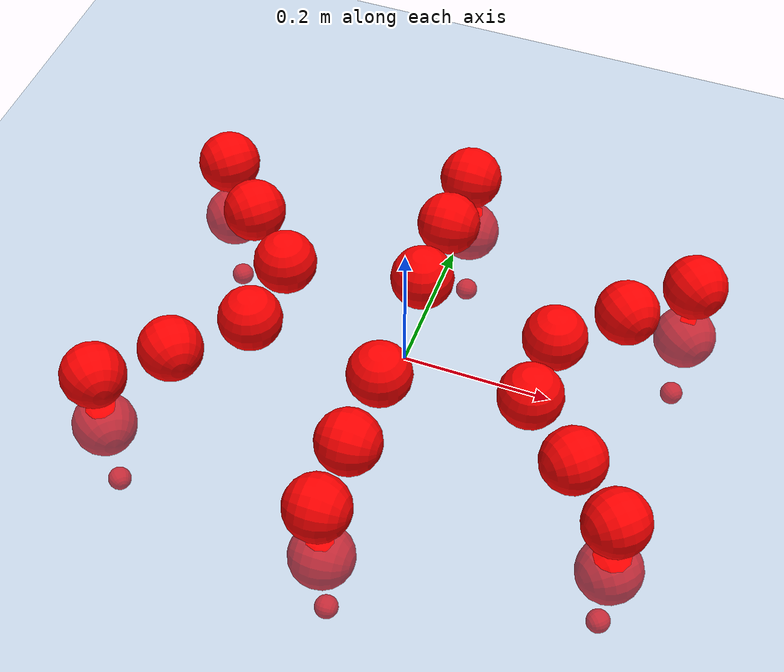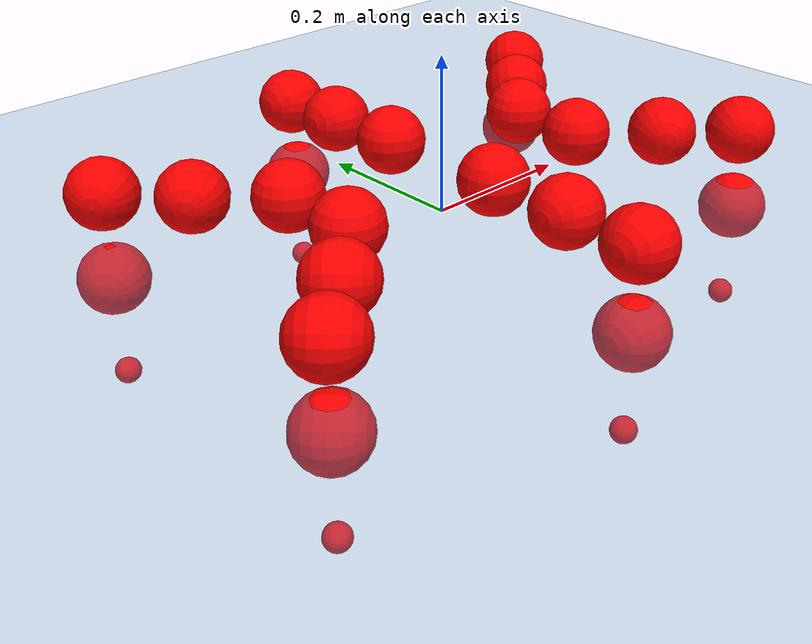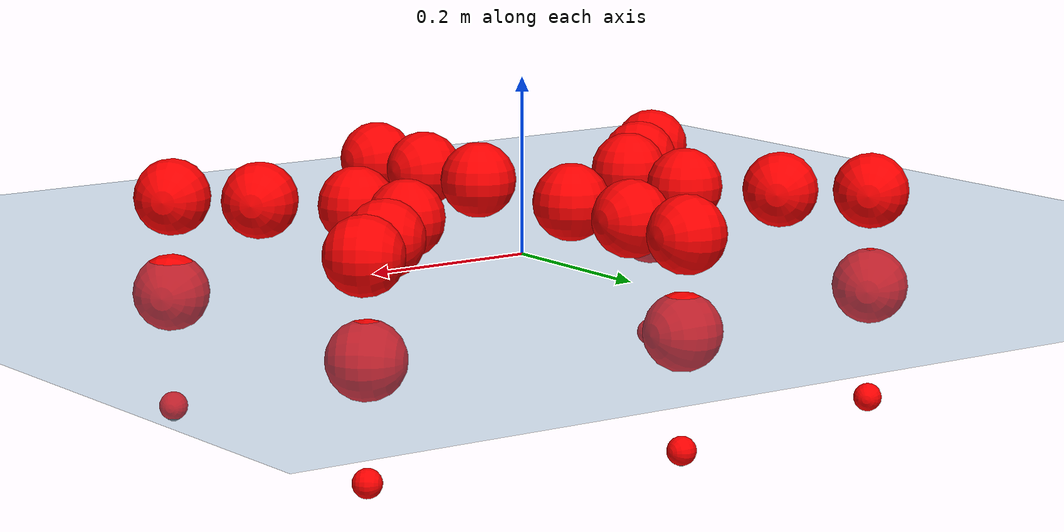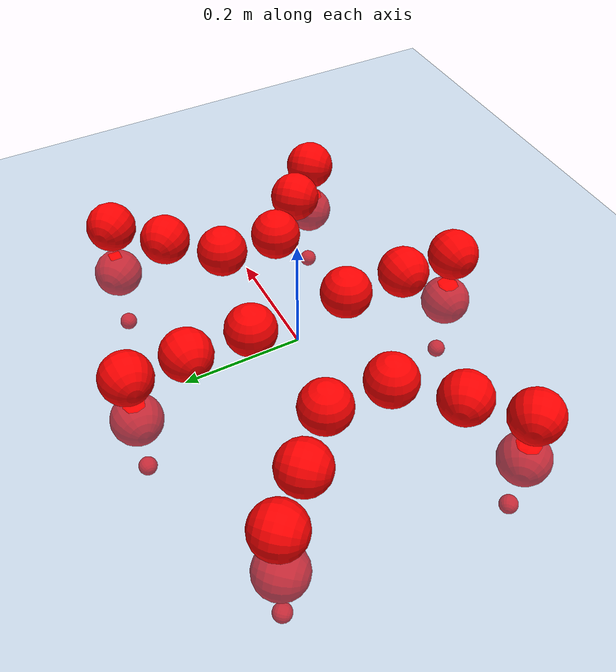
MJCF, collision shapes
<mujoco model="Golem">
  <compiler angle="radian" assetdir="assets" balanceinertia="true" inertiafromgeom="false"/>

  <option timestep="0.005" density="1.2" viscosity="2e-05"/>

  <size nkey="1"/>

  <visual>
    <quality shadowsize="8192"/>
    <map shadowclip="0.5"/>
  </visual>

  <default>
    <default class="/">
      <joint armature="0.01" damping="0.01" frictionloss="0.01"/>
      <geom contype="0" conaffinity="0" group="1" solref="-1000 -80"/>
      <site size="0.01 0.005 0.005" group="5"/>
      <general forcelimited="true" biastype="affine" gainprm="25" biasprm="0 -25 -0.5"/>
      <default class="visual">
        <geom type="mesh" group="2"/>
      </default>
      <default class="collision">
        <geom group="3"/>
      </default>
      <default class="foot">
        <geom size="0.01 0 0" condim="6" group="4" priority="1" solimp="0.015 1 0.01"/>
      </default>
      <default class="reward_collision_sphere">
        <geom group="5" rgba="1 0 0 1"/>
      </default>
    </default>
  </default>

  <asset>
    <texture type="skybox" colorspace="auto" name="//unnamed_texture_0" builtin="gradient" rgb1="0.95 0.95 0.95" rgb2="0.95 0.95 0.95" width="100" height="600"/>
    <texture type="2d" colorspace="auto" name="texplane" builtin="checker" rgb1="0.345 0.575 0.748" rgb2="0.345 0.575 0.748" markrgb="1 1 1" width="512" height="512"/>
    <material name="MatPlane" class="/" texture="texplane" texuniform="true" texrepeat="2 2" specular="0.9"/>
    <mesh name="body" class="/" file="body.stl" scale="0.001 0.001 0.001"/>
    <mesh name="coxa" class="/" file="coxa.stl" scale="0.001 0.001 0.001"/>
    <mesh name="femur" class="/" file="femur.stl" scale="0.001 0.001 0.001"/>
    <mesh name="tibia" class="/" file="tibia.stl" scale="0.001 0.001 0.001"/>
    <mesh name="tarsus" class="/" file="tarsus.stl" scale="0.001 0.001 0.001"/>
  </asset>

  <worldbody>
    <geom name="floor" class="/" size="100 100 0.125" type="plane" group="0" material="MatPlane"/>
    <light name="toplight_shadow" class="/" pos="0 0 5" dir="0.0990148 0.0990148 -0.990148" type="directional" ambient="0.04 0.04 0.04" diffuse="0.55 0.55 0.55" specular="0.12 0.12 0.12"/>
    <light name="toplight_fill" class="/" pos="0 0 5" dir="0.0990148 0.0990148 -0.990148" type="directional" castshadow="false" ambient="0.04 0.04 0.04" diffuse="0.3 0.3 0.3" specular="0.08 0.08 0.08"/>
    <body name="trunk" pos="-0.00262434 -0.00236927 -0.000846479" quat="1 4.44815e-05 -0.000399449 -0.000590664">
      <inertial pos="0.00300938 -0.00126256 -0.00315634" quat="0.999925 -0.00309627 -0.00412229 -0.0110898" mass="4.82129" diaginertia="0.0261797 0.00737988 0.0164038"/>
      <joint name="//unnamed_joint_0" type="free"/>
      <geom name="//unnamed_geom_1" class="/" pos="0 0 0.0698637" quat="1 0 0 0" type="mesh" rgba="0.9 0.9 0.9 1" mesh="body"/>
      <site name="imu" class="/" pos="0.171038 0.0130868 0.106499" size="0.0107945"/>
      <camera name="track" class="/" pos="0 -1.87739 0" quat="0.707107 0.707107 0 0" mode="trackcom"/>
      <camera name="ego_camera" class="/" pos="0.157044 0 0.109162" quat="-0.5 -0.5 0.5 0.5"/>
      <body name="coxa_RR" pos="-0.216229 -0.0807901 0.0703845" quat="0.382795 -3.44911e-05 -0.000268674 -0.923833">
        <inertial pos="-0.000198601 -0.000942408 0.000911721" quat="0.999997 -0.00256619 -0.000424238 -0.000468403" mass="0.250668" diaginertia="0.0248432 0.00720921 0.015139"/>
        <joint name="coxa_joint_RR" class="/" pos="0 0 0" axis="0.000693635 -0.000133453 -1" range="-3.14525 3.11283" armature="0.0112516" damping="0.0036316" frictionloss="0.0112565"/>
        <geom name="//unnamed_geom_2" class="/" type="mesh" rgba="0.2 0.2 0.2 1" mesh="coxa"/>
        <geom name="//unnamed_geom_3" class="reward_collision_sphere" size="0.043178" pos="-0.0362409 0 0"/>
        <body name="femur_RR" pos="0.074423 0.00204919 -0.0025816" quat="0.500093 -0.500297 0.499631 0.499979">
          <inertial pos="-0.00221384 -0.000220789 -0.001605" quat="0.999951 0.00705977 0.00168878 0.00677637" mass="0.24236" diaginertia="0.0247074 0.00704327 0.0151408"/>
          <joint name="femur_joint_RR" class="/" pos="0 0 0" axis="-0.0062527 0.00337801 -0.999975" stiffness="0.00606813" range="-3.13927 3.14042" armature="0.0112792" damping="0.0141012" frictionloss="0.0106197"/>
          <geom name="//unnamed_geom_4" class="/" type="mesh" rgba="0.9 0.9 0.9 1" mesh="femur"/>
          <geom name="//unnamed_geom_5" class="reward_collision_sphere" size="0.043178"/>
          <body name="tibia_RR" pos="0.00142176 -0.10293 -0.00174147" quat="-0.000320477 1 0.000163529 -0.0002119">
            <inertial pos="0.000617131 -0.000453955 -0.00277979" quat="0.999932 0.00636919 0.00102472 0.00976512" mass="0.259928" diaginertia="0.0264148 0.00767023 0.0157821"/>
            <joint name="tibia_joint_RR" class="/" pos="0 0 0" axis="-0.0152766 -0.0015603 0.999882" range="-3.18794 3.14358" armature="0.00992" damping="0.00136349" frictionloss="0.00926876"/>
            <geom name="//unnamed_geom_6" class="/" type="mesh" rgba="0.2 0.2 0.2 1" mesh="tibia"/>
            <geom name="//unnamed_geom_7" class="reward_collision_sphere" size="0.043178"/>
            <body name="tarsus_RR" pos="0.104085 0.0020217 0.000113581" quat="1 -0.00029203 2.15447e-05 -1.15193e-05">
              <inertial pos="0.0722686 0.000350396 0.00034278" quat="0.497139 0.498691 0.495676 0.508394" mass="0.247877" diaginertia="0.0253562 0.00706255 0.0155008"/>
              <joint name="tarsus_joint_RR" class="/" pos="0 0 0" axis="-0.0077945 0.000592235 0.999969" range="-3.12763 3.08741" armature="0.0101397" damping="0.0434686" frictionloss="0.0107899"/>
              <geom name="//unnamed_geom_8" class="/" type="mesh" rgba="0.9 0.9 0.9 1" mesh="tarsus"/>
              <geom name="foot_1" class="foot" size="0.0110296" pos="0.135299 0 0" quat="0 -0.707107 0 0.707107"/>
              <geom name="//unnamed_geom_10" class="reward_collision_sphere" size="0.043178"/>
              <geom name="//unnamed_geom_11" class="reward_collision_sphere" size="0.0161917" pos="0.129863 0 0"/>
              <site name="foot_1" class="foot" pos="0.135299 0 0" quat="0 -0.707107 0 0.707107" size="0.0107945"/>
            </body>
          </body>
        </body>
      </body>
      <body name="coxa_RM" pos="0.00087655 -0.12191 0.0730194" quat="0.706733 0.000483466 0.000853833 -0.70748">
        <inertial pos="-0.00273593 0.00055989 -0.00247962" quat="0.999901 -0.0133659 0.00423538 0.00117243" mass="0.251844" diaginertia="0.0244172 0.00726304 0.0152244"/>
        <joint name="coxa_joint_RM" class="/" pos="0 0 0" axis="0.000354148 -0.00121484 -0.999999" range="-3.12425 3.15923" armature="0.0102553" damping="0.0101143" frictionloss="0.0100231"/>
        <geom name="//unnamed_geom_12" class="/" type="mesh" rgba="0.2 0.2 0.2 1" mesh="coxa"/>
        <geom name="//unnamed_geom_13" class="reward_collision_sphere" size="0.043178" pos="-0.0362409 0 0"/>
        <body name="femur_RM" pos="0.0733609 0.000771891 -0.00153787" quat="0.500937 -0.498853 0.499986 0.500221">
          <inertial pos="0.00244976 0.0001662 7.28173e-05" quat="0.999942 -0.010151 0.00353656 0.00100673" mass="0.253367" diaginertia="0.0257054 0.00704454 0.0157243"/>
          <joint name="femur_joint_RM" class="/" pos="0 0 0" axis="0.01098 -0.00837308 -0.999905" range="-3.1357 3.13496" armature="0.0112264" damping="0.011866" frictionloss="0.0113189"/>
          <geom name="//unnamed_geom_14" class="/" type="mesh" rgba="0.9 0.9 0.9 1" mesh="femur"/>
          <geom name="//unnamed_geom_15" class="reward_collision_sphere" size="0.043178"/>
          <body name="tibia_RM" pos="0.000947655 -0.0998855 -0.000266683" quat="-0.000118897 1 -0.000170131 -4.12033e-05">
            <inertial pos="-0.00202903 0.00106673 -0.00237624" quat="0.999987 -0.00369226 0.00186408 -0.00285984" mass="0.257858" diaginertia="0.0265397 0.00700924 0.015015"/>
            <joint name="tibia_joint_RM" class="/" pos="0 0 0" axis="-0.00964265 -0.00626049 0.999934" range="-3.14251 3.11677" armature="0.0110553" damping="0.0111176" frictionloss="0.0102727"/>
            <geom name="//unnamed_geom_16" class="/" type="mesh" rgba="0.2 0.2 0.2 1" mesh="tibia"/>
            <geom name="//unnamed_geom_17" class="reward_collision_sphere" size="0.043178"/>
            <body name="tarsus_RM" pos="0.10909 0.000548809 -0.000528929" quat="1 0.000268668 5.93157e-05 0.000134258">
              <inertial pos="0.0734585 0.000320984 0.000861278" quat="0.498393 0.502144 0.501084 0.498368" mass="0.250045" diaginertia="0.0249925 0.00728418 0.0161291"/>
              <joint name="tarsus_joint_RM" class="/" pos="0 0 0" axis="0.0114865 -0.00898149 0.999894" range="-3.15325 3.14144" armature="0.010733" damping="0.00417509" frictionloss="0.0104249"/>
              <geom name="//unnamed_geom_18" class="/" type="mesh" rgba="0.9 0.9 0.9 1" mesh="tarsus"/>
              <geom name="foot_2" class="foot" size="0.00988152" pos="0.135299 0 0" quat="0 -0.707107 0 0.707107"/>
              <geom name="//unnamed_geom_20" class="reward_collision_sphere" size="0.043178"/>
              <geom name="//unnamed_geom_21" class="reward_collision_sphere" size="0.0161917" pos="0.129863 0 0"/>
              <site name="foot_2" class="foot" pos="0.135299 0 0" quat="0 -0.707107 0 0.707107" size="0.0107945"/>
            </body>
          </body>
        </body>
      </body>
      <body name="coxa_RF" pos="0.214932 -0.0757251 0.0682641" quat="0.923982 -5.39273e-05 -9.17149e-05 -0.382437">
        <inertial pos="-0.00177987 -0.000962103 -0.000567463" quat="0.999903 -0.0015532 -0.00460491 0.0130355" mass="0.259189" diaginertia="0.0268708 0.00716216 0.0157525"/>
        <joint name="coxa_joint_RF" class="/" pos="0 0 0" axis="0.00131333 0.00414343 -0.999991" range="-3.16647 3.14351" armature="0.0121819" damping="0.0123042" frictionloss="0.010516"/>
        <geom name="//unnamed_geom_22" class="/" type="mesh" rgba="0.2 0.2 0.2 1" mesh="coxa"/>
        <geom name="//unnamed_geom_23" class="reward_collision_sphere" size="0.043178" pos="-0.0362409 0 0"/>
        <body name="femur_RF" pos="0.0729561 7.94938e-06 0.00204604" quat="0.500052 -0.499957 0.50001 0.499981">
          <inertial pos="0.00224499 0.00211755 0.00212054" quat="0.999992 0.00319217 0.00172915 -0.00178409" mass="0.242824" diaginertia="0.0265227 0.00702488 0.0156821"/>
          <joint name="femur_joint_RF" class="/" pos="0 0 0" axis="-0.00629512 0.0116711 -0.999912" range="-3.1601 3.0843" armature="0.0108635" damping="0.00569159" frictionloss="0.0109302"/>
          <geom name="//unnamed_geom_24" class="/" type="mesh" rgba="0.9 0.9 0.9 1" mesh="femur"/>
          <geom name="//unnamed_geom_25" class="reward_collision_sphere" size="0.043178"/>
          <body name="tibia_RF" pos="-0.00135849 -0.0990382 0.00225657" quat="-9.87125e-05 1 0.000353984 -0.000205434">
            <inertial pos="-0.00198762 -0.00251191 0.00234877" quat="0.999935 -0.00408731 0.0105964 -0.000572277" mass="0.260345" diaginertia="0.0255853 0.00722232 0.0155773"/>
            <joint name="tibia_joint_RF" class="/" pos="0 0 0" axis="-0.00371129 -0.00450389 0.999983" range="-3.14672 3.08044" armature="0.0114564" damping="0.0132618" frictionloss="0.0105775"/>
            <geom name="//unnamed_geom_26" class="/" type="mesh" rgba="0.2 0.2 0.2 1" mesh="tibia"/>
            <geom name="//unnamed_geom_27" class="reward_collision_sphere" size="0.043178"/>
            <body name="tarsus_RF" pos="0.107339 0.00249268 -0.00228377" quat="0.999999 -0.00114703 0.000703889 -0.000374151">
              <inertial pos="0.0745655 0.000145823 0.000232661" quat="0.501301 0.498809 0.501499 0.498383" mass="0.254333" diaginertia="0.0262574 0.00748063 0.0149824"/>
              <joint name="tarsus_joint_RF" class="/" pos="0 0 0" axis="-0.00142521 0.000664534 0.999999" range="-3.18175 3.13494" armature="0.0123722" damping="0.00734579" frictionloss="0.0117436"/>
              <geom name="//unnamed_geom_28" class="/" type="mesh" rgba="0.9 0.9 0.9 1" mesh="tarsus"/>
              <geom name="foot_3" class="foot" size="0.0117725" pos="0.135299 0 0" quat="0 -0.707107 0 0.707107"/>
              <geom name="//unnamed_geom_30" class="reward_collision_sphere" size="0.043178"/>
              <geom name="//unnamed_geom_31" class="reward_collision_sphere" size="0.0161917" pos="0.129863 0 0"/>
              <site name="foot_3" class="foot" pos="0.135299 0 0" quat="0 -0.707107 0 0.707107" size="0.0107945"/>
            </body>
          </body>
        </body>
      </body>
      <body name="coxa_LR" pos="-0.21319 0.0799267 0.0669331" quat="0.381554 -0.000177342 -0.000255349 0.924346">
        <inertial pos="0.00111257 -0.00057272 -0.00176779" quat="0.9999 -0.00122979 0.00356842 -0.0136309" mass="0.238687" diaginertia="0.0253445 0.00719511 0.0151"/>
        <joint name="coxa_joint_LR" class="/" pos="0 0 0" axis="0.00264107 0.00201768 -0.999994" stiffness="0.0115148" range="-3.14181 3.17744" armature="0.01232" damping="0.00647403" frictionloss="0.00974449"/>
        <geom name="//unnamed_geom_32" class="/" type="mesh" rgba="0.2 0.2 0.2 1" mesh="coxa"/>
        <geom name="//unnamed_geom_33" class="reward_collision_sphere" size="0.043178" pos="-0.0362409 0 0"/>
        <body name="femur_LR" pos="0.0727196 0.00134465 -0.00145371" quat="0.500012 -0.500154 0.50032 0.499513">
          <inertial pos="-0.000161353 0.000882808 0.000516832" quat="0.999936 0.0026066 0.00680676 -0.00868172" mass="0.24428" diaginertia="0.0246265 0.00724212 0.0149191"/>
          <joint name="femur_joint_LR" class="/" pos="0 0 0" axis="-0.00111889 -0.00134911 0.999998" range="-3.15168 3.08259" armature="0.0121373" damping="0" frictionloss="0.0106972"/>
          <geom name="//unnamed_geom_34" class="/" type="mesh" rgba="0.9 0.9 0.9 1" mesh="femur"/>
          <geom name="//unnamed_geom_35" class="reward_collision_sphere" size="0.043178"/>
          <body name="tibia_LR" pos="-0.00193317 -0.102759 -0.0020239" quat="-0.000370641 0.999999 0.00109051 0.000894005">
            <inertial pos="0.00259868 0.00233962 0.000516992" quat="0.9999 -0.0136498 -0.0011411 0.00349482" mass="0.244903" diaginertia="0.026544 0.00761083 0.0152708"/>
            <joint name="tibia_joint_LR" class="/" pos="0 0 0" axis="-0.00036332 -0.00016673 -1" stiffness="0.00735103" range="-3.15021 3.1376" armature="0.0110489" damping="0.0122899" frictionloss="0.0120006"/>
            <geom name="//unnamed_geom_36" class="/" type="mesh" rgba="0.2 0.2 0.2 1" mesh="tibia"/>
            <geom name="//unnamed_geom_37" class="reward_collision_sphere" size="0.043178"/>
            <body name="tarsus_LR" pos="0.109364 0.000653945 -0.00158379" quat="1 -0.000123569 -0.000526857 0.000483824">
              <inertial pos="0.071107 -0.00223523 -0.000700896" quat="0.495569 0.506741 0.49929 0.498332" mass="0.250106" diaginertia="0.0255834 0.00719846 0.0152073"/>
              <joint name="tarsus_joint_LR" class="/" pos="0 0 0" axis="0.000604974 7.05945e-05 -1" range="-3.12139 3.15552" armature="0.00962948" damping="0.0272546" frictionloss="0.0104253"/>
              <geom name="//unnamed_geom_38" class="/" type="mesh" rgba="0.9 0.9 0.9 1" mesh="tarsus"/>
              <geom name="foot_4" class="foot" size="0.0106558" pos="0.135299 0 0" quat="0.707107 0 -0.707107 0"/>
              <geom name="//unnamed_geom_40" class="reward_collision_sphere" size="0.043178"/>
              <geom name="//unnamed_geom_41" class="reward_collision_sphere" size="0.0161917" pos="0.129863 0 0"/>
              <site name="foot_4" class="foot" pos="0.135299 0 0" quat="0.707107 0 -0.707107 0" size="0.0107945"/>
            </body>
          </body>
        </body>
      </body>
      <body name="coxa_LM" pos="-0.00307573 0.123437 0.0715542" quat="0.707032 -0.000246898 -0.000613418 0.707181">
        <inertial pos="0.00297152 -0.0025741 -0.00171566" quat="0.999902 -0.000213127 -0.0135764 -0.00343107" mass="0.25474" diaginertia="0.0254515 0.00737623 0.0158263"/>
        <joint name="coxa_joint_LM" class="/" pos="0 0 0" axis="0.00403271 0.000974335 -0.999991" stiffness="0.00779793" range="-3.14871 3.14867" armature="0.0115956" damping="0" frictionloss="0.0110153"/>
        <geom name="//unnamed_geom_42" class="/" type="mesh" rgba="0.2 0.2 0.2 1" mesh="coxa"/>
        <geom name="//unnamed_geom_43" class="reward_collision_sphere" size="0.043178" pos="-0.0362409 0 0"/>
        <body name="femur_LM" pos="0.0721788 -6.92497e-05 -0.00272631" quat="0.500635 -0.499705 0.49902 0.500639">
          <inertial pos="-0.00276115 -0.000429891 -0.00254141" quat="0.999931 0.00826519 -0.00393194 -0.00741575" mass="0.268802" diaginertia="0.0268188 0.00743944 0.0160648"/>
          <joint name="femur_joint_LM" class="/" pos="0 0 0" axis="0.00138097 -0.00181305 0.999997" range="-3.08896 3.13858" armature="0.012311" damping="0" frictionloss="0.010897"/>
          <geom name="//unnamed_geom_44" class="/" type="mesh" rgba="0.9 0.9 0.9 1" mesh="femur"/>
          <geom name="//unnamed_geom_45" class="reward_collision_sphere" size="0.043178"/>
          <body name="tibia_LM" pos="0.00293356 -0.0971067 -0.00030305" quat="-1.82681e-05 1 -6.29376e-05 -2.10214e-05">
            <inertial pos="0.00227038 0.00154912 0.00157399" quat="0.999997 0.00255558 -0.000285485 -0.000328037" mass="0.253646" diaginertia="0.0253346 0.00708372 0.0161245"/>
            <joint name="tibia_joint_LM" class="/" pos="0 0 0" axis="-0.00860629 0.00536519 -0.999949" range="-3.13892 3.1486" armature="0.0122376" damping="0.00232962" frictionloss="0.00926785"/>
            <geom name="//unnamed_geom_46" class="/" type="mesh" rgba="0.2 0.2 0.2 1" mesh="tibia"/>
            <geom name="//unnamed_geom_47" class="reward_collision_sphere" size="0.043178"/>
            <body name="tarsus_LM" pos="0.1049 -0.00282902 0.00252247" quat="0.999999 -0.000466135 -0.0012635 -0.000348829">
              <inertial pos="0.0732469 0.00120127 0.00252785" quat="0.499045 0.501875 0.496327 0.502728" mass="0.25761" diaginertia="0.0256031 0.0076012 0.0156393"/>
              <joint name="tarsus_joint_LM" class="/" pos="0 0 0" axis="-0.0087834 0.00937064 -0.999918" stiffness="0.0110821" range="-3.16473 3.1164" armature="0.01097" damping="0.0161695" frictionloss="0.0106827"/>
              <geom name="//unnamed_geom_48" class="/" type="mesh" rgba="0.9 0.9 0.9 1" mesh="tarsus"/>
              <geom name="foot_5" class="foot" size="0.0109869" pos="0.135299 0 0" quat="0.707107 0 -0.707107 0"/>
              <geom name="//unnamed_geom_50" class="reward_collision_sphere" size="0.043178"/>
              <geom name="//unnamed_geom_51" class="reward_collision_sphere" size="0.0161917" pos="0.129863 0 0"/>
              <site name="foot_5" class="foot" pos="0.135299 0 0" quat="0.707107 0 -0.707107 0" size="0.0107945"/>
            </body>
          </body>
        </body>
      </body>
      <body name="coxa_LF" pos="0.217172 0.0763868 0.0681366" quat="0.924023 0.000957812 -0.000843486 0.382335">
        <inertial pos="0.000223304 0.00207481 -0.000306235" quat="0.999999 -0.00137133 -0.000487711 0.00018442" mass="0.248486" diaginertia="0.0255316 0.00772711 0.0159773"/>
        <joint name="coxa_joint_LF" class="/" pos="0 0 0" axis="-0.00661238 -0.0153121 -0.999861" range="-3.14156 3.12135" armature="0.0114927" damping="0.0156419" frictionloss="0.0108667"/>
        <geom name="//unnamed_geom_52" class="/" type="mesh" rgba="0.2 0.2 0.2 1" mesh="coxa"/>
        <geom name="//unnamed_geom_53" class="reward_collision_sphere" size="0.043178" pos="-0.0362409 0 0"/>
        <body name="femur_LF" pos="0.0712073 -0.00089985 -0.00287171" quat="0.499887 -0.501176 0.499236 0.499699">
          <inertial pos="0.00274499 0.000535922 0.00168863" quat="0.99991 0.00731296 -0.00933043 0.00627231" mass="0.248273" diaginertia="0.0249021 0.007424 0.015658"/>
          <joint name="femur_joint_LF" class="/" pos="0 0 0" axis="-0.00296895 0.012036 0.999923" range="-3.15027 3.09605" armature="0.0105235" damping="0" frictionloss="0.0106017"/>
          <geom name="//unnamed_geom_54" class="/" type="mesh" rgba="0.9 0.9 0.9 1" mesh="femur"/>
          <geom name="//unnamed_geom_55" class="reward_collision_sphere" size="0.043178"/>
          <body name="tibia_LF" pos="-0.000862183 -0.103903 -0.00114789" quat="0.000975157 0.999999 -0.000749833 0.000335509">
            <inertial pos="-0.000368896 -0.00235584 1.38674e-05" quat="0.999987 -0.00320528 0.00347956 0.00173551" mass="0.251488" diaginertia="0.0250454 0.00728594 0.0154115"/>
            <joint name="tibia_joint_LF" class="/" pos="0 0 0" axis="0.00683711 0.0135864 -0.999884" range="-3.19542 3.12506" armature="0.0122017" damping="0.0023639" frictionloss="0.0121445"/>
            <geom name="//unnamed_geom_56" class="/" type="mesh" rgba="0.2 0.2 0.2 1" mesh="tibia"/>
            <geom name="//unnamed_geom_57" class="reward_collision_sphere" size="0.043178"/>
            <body name="tarsus_LF" pos="0.108083 0.0028259 -0.00233258" quat="1 0.000719088 8.81095e-05 3.60627e-05">
              <inertial pos="0.071139 0.000853089 -2.81487e-05" quat="0.501513 0.49605 0.50143 0.500987" mass="0.250445" diaginertia="0.0254661 0.00726101 0.0148193"/>
              <joint name="tarsus_joint_LF" class="/" pos="0 0 0" axis="0.00946234 -0.00204235 -0.999953" stiffness="0.0299354" range="-3.12492 3.08318" armature="0.0111747" damping="0.0257401" frictionloss="0.011853"/>
              <geom name="//unnamed_geom_58" class="/" type="mesh" rgba="0.9 0.9 0.9 1" mesh="tarsus"/>
              <geom name="foot_6" class="foot" size="0.00965117" pos="0.135299 0 0" quat="0.707107 0 -0.707107 0"/>
              <geom name="//unnamed_geom_60" class="reward_collision_sphere" size="0.043178"/>
              <geom name="//unnamed_geom_61" class="reward_collision_sphere" size="0.0161917" pos="0.129863 0 0"/>
              <site name="foot_6" class="foot" pos="0.135299 0 0" quat="0.707107 0 -0.707107 0" size="0.0107945"/>
            </body>
          </body>
        </body>
      </body>
    </body>
  </worldbody>

  <contact>
    <pair class="/" geom1="floor" geom2="foot_1" name="//unnamed_contact_0"/>
    <pair class="/" geom1="floor" geom2="foot_2" name="//unnamed_contact_1"/>
    <pair class="/" geom1="floor" geom2="foot_3" name="//unnamed_contact_2"/>
    <pair class="/" geom1="floor" geom2="foot_4" name="//unnamed_contact_3"/>
    <pair class="/" geom1="floor" geom2="foot_5" name="//unnamed_contact_4"/>
    <pair class="/" geom1="floor" geom2="foot_6" name="//unnamed_contact_5"/>
  </contact>

  <actuator>
    <general name="coxa_joint_RR" class="/" joint="coxa_joint_RR" forcerange="-7.20961 7.20961" gainprm="25.4983" biasprm="0 -25.4983 -0.521142"/>
    <general name="femur_joint_RR" class="/" joint="femur_joint_RR" forcerange="-8.38806 8.38806" gainprm="25.4983" biasprm="0 -25.4983 -0.521142"/>
    <general name="tibia_joint_RR" class="/" joint="tibia_joint_RR" forcerange="-7.34098 7.34098" gainprm="25.4983" biasprm="0 -25.4983 -0.521142"/>
    <general name="tarsus_joint_RR" class="/" joint="tarsus_joint_RR" forcerange="-8.52742 8.52742" gainprm="25.4983" biasprm="0 -25.4983 -0.521142"/>
    <general name="coxa_joint_RM" class="/" joint="coxa_joint_RM" forcerange="-7.84393 7.84393" gainprm="25.4983" biasprm="0 -25.4983 -0.521142"/>
    <general name="femur_joint_RM" class="/" joint="femur_joint_RM" forcerange="-7.85597 7.85597" gainprm="25.4983" biasprm="0 -25.4983 -0.521142"/>
    <general name="tibia_joint_RM" class="/" joint="tibia_joint_RM" forcerange="-7.11612 7.11612" gainprm="25.4983" biasprm="0 -25.4983 -0.521142"/>
    <general name="tarsus_joint_RM" class="/" joint="tarsus_joint_RM" forcerange="-8.47174 8.47174" gainprm="25.4983" biasprm="0 -25.4983 -0.521142"/>
    <general name="coxa_joint_RF" class="/" joint="coxa_joint_RF" forcerange="-7.7004 7.7004" gainprm="25.4983" biasprm="0 -25.4983 -0.521142"/>
    <general name="femur_joint_RF" class="/" joint="femur_joint_RF" forcerange="-7.85966 7.85966" gainprm="25.4983" biasprm="0 -25.4983 -0.521142"/>
    <general name="tibia_joint_RF" class="/" joint="tibia_joint_RF" forcerange="-8.58472 8.58472" gainprm="25.4983" biasprm="0 -25.4983 -0.521142"/>
    <general name="tarsus_joint_RF" class="/" joint="tarsus_joint_RF" forcerange="-8.34424 8.34424" gainprm="25.4983" biasprm="0 -25.4983 -0.521142"/>
    <general name="coxa_joint_LR" class="/" joint="coxa_joint_LR" forcerange="-7.88793 7.88793" gainprm="25.4983" biasprm="0 -25.4983 -0.521142"/>
    <general name="femur_joint_LR" class="/" joint="femur_joint_LR" forcerange="-7.05128 7.05128" gainprm="25.4983" biasprm="0 -25.4983 -0.521142"/>
    <general name="tibia_joint_LR" class="/" joint="tibia_joint_LR" forcerange="-7.4352 7.4352" gainprm="25.4983" biasprm="0 -25.4983 -0.521142"/>
    <general name="tarsus_joint_LR" class="/" joint="tarsus_joint_LR" forcerange="-7.08968 7.08968" gainprm="25.4983" biasprm="0 -25.4983 -0.521142"/>
    <general name="coxa_joint_LM" class="/" joint="coxa_joint_LM" forcerange="-7.43375 7.43375" gainprm="25.4983" biasprm="0 -25.4983 -0.521142"/>
    <general name="femur_joint_LM" class="/" joint="femur_joint_LM" forcerange="-7.87865 7.87865" gainprm="25.4983" biasprm="0 -25.4983 -0.521142"/>
    <general name="tibia_joint_LM" class="/" joint="tibia_joint_LM" forcerange="-7.0527 7.0527" gainprm="25.4983" biasprm="0 -25.4983 -0.521142"/>
    <general name="tarsus_joint_LM" class="/" joint="tarsus_joint_LM" forcerange="-8.07798 8.07798" gainprm="25.4983" biasprm="0 -25.4983 -0.521142"/>
    <general name="coxa_joint_LF" class="/" joint="coxa_joint_LF" forcerange="-7.63353 7.63353" gainprm="25.4983" biasprm="0 -25.4983 -0.521142"/>
    <general name="femur_joint_LF" class="/" joint="femur_joint_LF" forcerange="-7.80667 7.80667" gainprm="25.4983" biasprm="0 -25.4983 -0.521142"/>
    <general name="tibia_joint_LF" class="/" joint="tibia_joint_LF" forcerange="-8.67681 8.67681" gainprm="25.4983" biasprm="0 -25.4983 -0.521142"/>
    <general name="tarsus_joint_LF" class="/" joint="tarsus_joint_LF" forcerange="-7.4649 7.4649" gainprm="25.4983" biasprm="0 -25.4983 -0.521142"/>
  </actuator>

  <sensor>
    <gyro site="imu" name="imu_angular_velocity"/>
    <velocimeter site="imu" name="imu_linear_velocity"/>
    <framelinvel objtype="site" objname="foot_1" name="foot_1_global_linear_velocity"/>
    <framelinvel objtype="site" objname="foot_2" name="foot_2_global_linear_velocity"/>
    <framelinvel objtype="site" objname="foot_3" name="foot_3_global_linear_velocity"/>
    <framelinvel objtype="site" objname="foot_4" name="foot_4_global_linear_velocity"/>
    <framelinvel objtype="site" objname="foot_5" name="foot_5_global_linear_velocity"/>
    <framelinvel objtype="site" objname="foot_6" name="foot_6_global_linear_velocity"/>
  </sensor>

  <keyframe>
    <key name="home" qpos="0 0 0.1457 1 0 0 0 0 0 0 0 0 0 0 0 0 0 0 0 0 0 0 0 0 0 0 0 0 0 0 0"/>
  </keyframe>
</mujoco>
